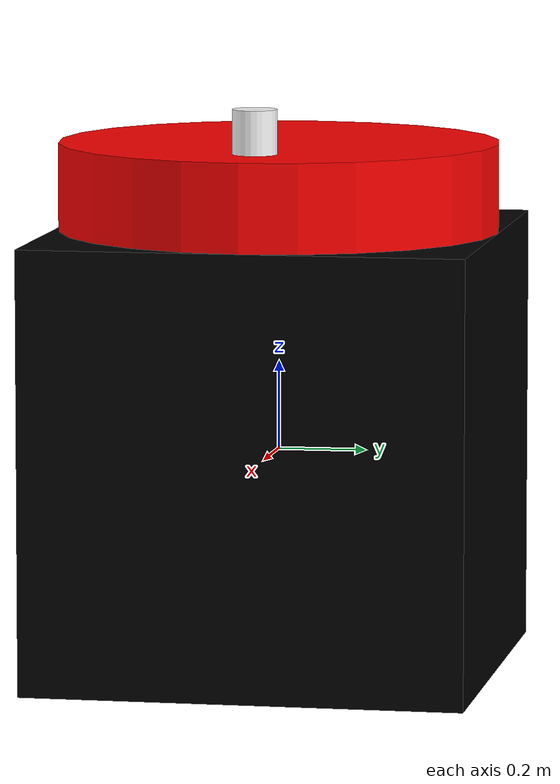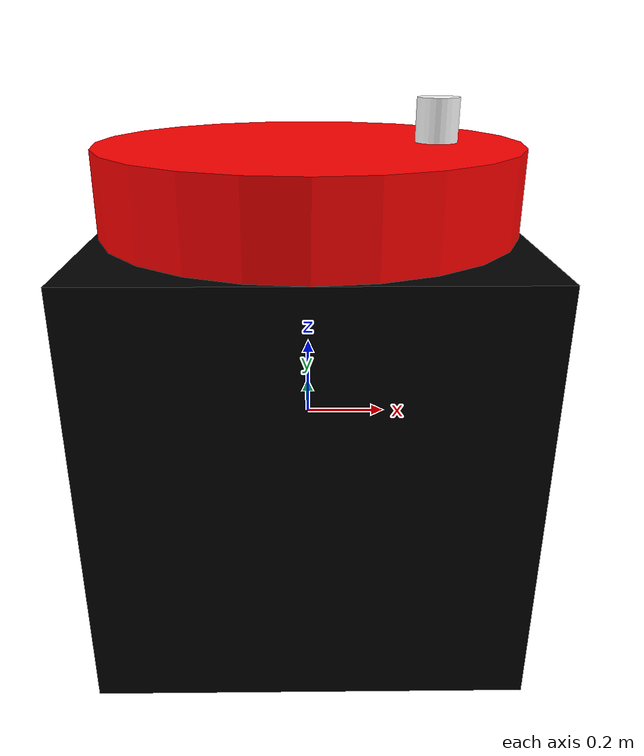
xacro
<?xml version="1.0"?>
<robot name="qube_robot" xmlns:xacro="http://www.ros.org/wiki/xacro">
  <xacro:include filename="$(find qube_description)/urdf/qube.macro.xacro" />

  <!-- World link -->
  <link name="world"/>

  <!-- Instansier Qube-makro -->
  <xacro:qube/>

  <!-- Fest base_link til world -->
  <joint name="world_base_joint" type="fixed">
    <parent link="world"/>
    <child link="base_link"/>
    <origin xyz="0 0 0"/>
  </joint>
</robot>

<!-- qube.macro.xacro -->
<robot xmlns:xacro="http://www.ros.org/wiki/xacro">
  <!-- Macro-parametre -->
  <xacro:property name="base_length" value="1" />
  <xacro:property name="base_width" value="1" />
  <xacro:property name="base_height" value="1" />
  <xacro:property name="disk_radius" value="0.5" />
  <xacro:property name="disk_height" value="0.2" />
  <xacro:property name="pointer_length" value="0.4" />
  <xacro:property name="pointer_radius" value="0.05" />

  <xacro:macro name="qube">
    <!-- Base -->
    <link name="base_link">
      <inertial>
        <mass value="1" />
        <inertia ixx="0.1" iyy="0.1" izz="0.1" ixy="0" ixz="0" iyz="0" />
      </inertial>
      <visual>
        <origin xyz="0 0 0" rpy="0 0 0"/>
        <geometry>
          <box size="${base_length} ${base_width} ${base_height}"/>
        </geometry>
        <material name="black">
          <color rgba="0 0 0 1"/>
        </material>
      </visual>
    </link>

    <!-- Roterende disk -->
    <link name="rotating_disk">
      <inertial>
        <mass value="0.5" />
        <inertia ixx="0.05" iyy="0.05" izz="0.05" ixy="0" ixz="0" iyz="0" />
      </inertial>
      <visual>
        <origin xyz="0 0 0" rpy="0 0 0"/>
        <geometry>
          <cylinder radius="${disk_radius}" length="${disk_height}"/>
        </geometry>
        <material name="red">
          <color rgba="1 0 0 1"/>
        </material>
      </visual>
    </link>

    <joint name="disk_joint" type="continuous">
      <parent link="base_link"/>
      <child link="rotating_disk"/>
      <origin xyz="0 0 ${base_height/2 + disk_height/2}"/>
      <axis xyz="0 0 1"/>
    </joint>

    <!-- Hvit viser -->
    <link name="pointer">
      <inertial>
        <mass value="0.1" />
        <inertia ixx="0.01" iyy="0.01" izz="0.01" ixy="0" ixz="0" iyz="0" />
      </inertial>
      <visual>
        <origin xyz="0 0 0" rpy="0 0 0"/>
        <geometry>
          <cylinder radius="${pointer_radius}" length="${pointer_length}"/>
        </geometry>
        <material name="white">
          <color rgba="1 1 1 1"/>
        </material>
      </visual>
    </link>

    <joint name="pointer_joint" type="fixed">
      <parent link="rotating_disk"/>
      <child link="pointer"/>
      <origin xyz="${disk_radius - pointer_length/2} 0 0"/>
    </joint>
  </xacro:macro>
</robot>
